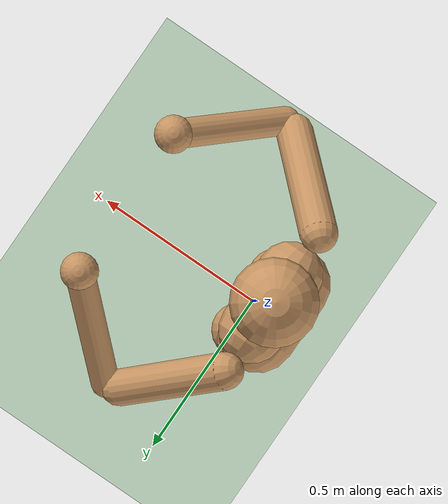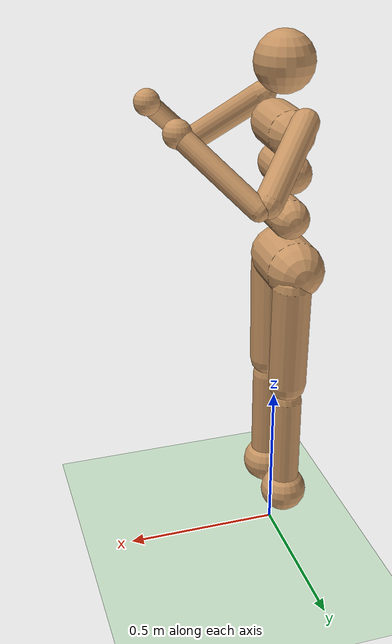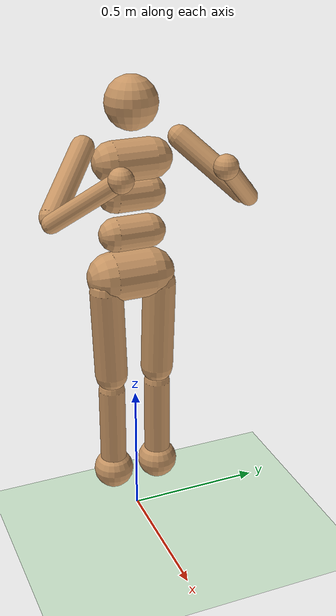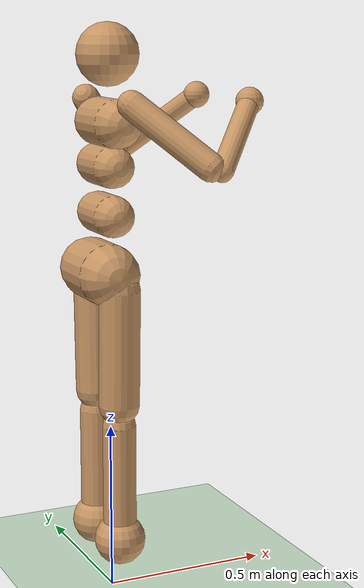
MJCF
<mujoco model="humanoid">
    <compiler angle="degree" inertiafromgeom="auto"/>
    <default>
        <joint armature="1" damping="1" limited="true"/>
        <geom conaffinity="1" condim="1" contype="1" margin="0.001" material="geom" rgba="0.8 0.6 .4 1"/>
        <motor ctrllimited="true" ctrlrange="-.4 .4"/>
    </default>
    <option integrator="RK4" iterations="50" solver="PGS" timestep="0.003">
    </option>
    <size nkey="5" nuser_geom="1"/>
    <visual>
        <map fogend="5" fogstart="3"/>
    </visual>
    <asset>
        <texture builtin="gradient" height="100" rgb1=".4 .5 .6" rgb2="0 0 0" type="skybox" width="100"/>
        <texture builtin="flat" height="1278" mark="cross" markrgb="1 1 1" name="texgeom" random="0.01" rgb1="0.8 0.6 0.4" rgb2="0.8 0.6 0.4" type="cube" width="127"/>
        <texture builtin="checker" height="100" name="texplane" rgb1="0 0 0" rgb2="0.8 0.8 0.8" type="2d" width="100"/>
        <material name="MatPlane" reflectance="0.5" shininess="1" specular="1" texrepeat="60 60" texture="texplane"/>
        <material name="geom" texture="texgeom" texuniform="true"/>
    </asset>
    <worldbody>
        <light cutoff="100" diffuse="1 1 1" dir="-0 0 -1.3" directional="true" exponent="1" pos="0 0 1.3" specular=".1 .1 .1"/>
        <geom condim="3" friction="1 .1 .1" material="MatPlane" name="floor" pos="0 0 0" rgba="0.8 0.9 0.8 1" size="20 20 0.125" type="plane"/>
        <body name="rootx_link" pos="0 0 1.4">
            <joint armature="0" axis="1 0 0" damping="0" range="-0.5 5.5" name="rootx" stiffness="0" type="slide"/>
            <inertial pos="0 0 0" quat="1 0 0 0" mass="0.00001" diaginertia="0.00001 0.00001 0.00001"/>
            <body name="rooty_link" pos="0 0 0">
                <joint armature="0" axis="0 1 0" damping="0" range="-0.5 0.5" name="rooty" stiffness="0" type="slide"/>
                <inertial pos="0 0 0" quat="1 0 0 0" mass="0.00001" diaginertia="0.00001 0.00001 0.00001"/>
                <body name="rootz_link" pos="0 0 0">
                    <joint armature="0" axis="0 0 1" damping="0" range="-0.4 0.1" name="rootz" stiffness="0" type="slide"/>
                    <inertial pos="0 0 0" quat="1 0 0 0" mass="0.00001" diaginertia="0.00001 0.00001 0.00001"/>
                    <body name="rootrz_link" pos="0 0 0">
                        <joint armature="0" axis="0 0 1" damping="0" range="-45 45" name="rootrz" stiffness="0" type="hinge"/>
                        <inertial pos="0 0 0" quat="1 0 0 0" mass="0.00001" diaginertia="0.00001 0.00001 0.00001"/>
                        <body name="rootry_link" pos="0 0 0">
                            <joint armature="0" axis="0 1 0" damping="0" range="-45 45" name="rootry" stiffness="0" type="hinge"/>
                            <inertial pos="0 0 0" quat="1 0 0 0" mass="0.00001" diaginertia="0.00001 0.00001 0.00001"/>
                            <body name="torso" pos="0 0 0">
                                <camera name="track" mode="trackcom" pos="0 -4 0" xyaxes="1 0 0 0 0 1"/>
                                <joint armature="0" axis="1 0 0" damping="0" range="-45 45" name="rootrx" stiffness="0" type="hinge"/>
                                <geom fromto="0 -.07 0 0 .07 0" name="torso1" size="0.07" type="capsule"/>
                                <geom name="head" pos="0 0 .19" size=".09" type="sphere" user="258"/>
                                <geom fromto="-.01 -.06 -.12 -.01 .06 -.12" name="uwaist" size="0.06" type="capsule"/>
                                <body name="lwaist_rz" pos="-.01 0 -0.260" quat="1 0 0 0">
                                    <joint armature="0.02" axis="0 0 1" damping="5" name="abdomen_z" pos="0 0 0.065" range="-45 45" stiffness="20" type="hinge"/>
                                    <inertial pos="0 0 0" quat="1 0 0 0" mass="0.00001" diaginertia="0.00001 0.00001 0.00001"/>
                                    <body name="lwaist" pos="0 0 0">
                                        <geom fromto="0 -.06 0 0 .06 0" name="lwaist" size="0.06" type="capsule"/>
                                        <joint armature="0.02" axis="0 1 0" damping="5" name="abdomen_y" pos="0 0 0.065" range="-75 30" stiffness="10" type="hinge"/>
                                        <body name="pelvis" pos="0 0 -0.165" quat="1 0 0 0">
                                            <joint armature="0.02" axis="1 0 0" damping="5" name="abdomen_x" pos="0 0 0.1" range="-35 35" stiffness="10" type="hinge"/>
                                            <geom fromto="-.02 -.07 0 -.02 .07 0" name="butt" size="0.09" type="capsule"/>
                                            <body name="right_thigh_rx" pos="0 -0.1 -0.04">
                                                <joint armature="0.01" axis="1 0 0" damping="5" name="right_hip_x" pos="0 0 0" range="-25 5" stiffness="10" type="hinge"/>
                                                <inertial pos="0 0 0" quat="1 0 0 0" mass="0.00001" diaginertia="0.00001 0.00001 0.00001"/>
                                                <body name="right_thigh_rz" pos="0 0 0">
                                                    <joint armature="0.01" axis="0 0 1" damping="5" name="right_hip_z" pos="0 0 0" range="-60 35" stiffness="10" type="hinge"/>
                                                    <inertial pos="0 0 0" quat="1 0 0 0" mass="0.00001" diaginertia="0.00001 0.00001 0.00001"/>
                                                    <body name="right_thigh" pos="0 0 0">
                                                        <joint armature="0.0080" axis="0 1 0" damping="5" name="right_hip_y" pos="0 0 0" range="-110 20" stiffness="20" type="hinge"/>
                                                        <geom fromto="0 0 0 0 0.01 -.34" name="right_thigh1" size="0.06" type="capsule"/>
                                                        <body name="right_shin" pos="0 0.01 -0.403">
                                                            <joint armature="0.0060" axis="0 -1 0" name="right_knee" pos="0 0 .02" range="-160 -2" type="hinge"/>
                                                            <geom fromto="0 0 0 0 0 -.3" name="right_shin1" size="0.049" type="capsule"/>
                                                            <body name="right_foot" pos="0 0 -0.45">
                                                                <geom name="right_foot" pos="0 0 0.1" size="0.075" type="sphere" user="0"/>
                                                                <inertial pos="0 0 0" quat="1 0 0 0" mass="0" diaginertia="0 0 0"/>
                                                            </body>
                                                        </body>
                                                    </body>
                                                </body>
                                            </body>
                                            <body name="left_thigh_rx" pos="0 0.1 -0.04">
                                                <joint armature="0.01" axis="-1 0 0" damping="5" name="left_hip_x" pos="0 0 0" range="-25 5" stiffness="10" type="hinge"/>
                                                <inertial pos="0 0 0" quat="1 0 0 0" mass="0.00001" diaginertia="0.00001 0.00001 0.00001"/>
                                                <body name="left_thigh_rz" pos="0 0 0">
                                                    <joint armature="0.01" axis="0 0 -1" damping="5" name="left_hip_z" pos="0 0 0" range="-60 35" stiffness="10" type="hinge"/>
                                                    <inertial pos="0 0 0" quat="1 0 0 0" mass="0.00001" diaginertia="0.00001 0.00001 0.00001"/>
                                                    <body name="left_thigh" pos="0 0 0">
                                                        <joint armature="0.01" axis="0 1 0" damping="5" name="left_hip_y" pos="0 0 0" range="-110 20" stiffness="20" type="hinge"/>
                                                        <geom fromto="0 0 0 0 -0.01 -.34" name="left_thigh1" size="0.06" type="capsule"/>
                                                        <body name="left_shin" pos="0 -0.01 -0.403">
                                                            <joint armature="0.0060" axis="0 -1 0" name="left_knee" pos="0 0 .02" range="-160 -2" stiffness="1" type="hinge"/>
                                                            <geom fromto="0 0 0 0 0 -.3" name="left_shin1" size="0.049" type="capsule"/>
                                                            <body name="left_foot" pos="0 0 -0.45">
                                                                <geom name="left_foot" type="sphere" size="0.075" pos="0 0 0.1" user="0" />
                                                                <inertial pos="0 0 0" quat="1 0 0 0" mass="0" diaginertia="0 0 0"/>
                                                            </body>
                                                        </body>
                                                    </body>
                                                </body>
                                            </body>
                                        </body>
                                    </body>
                                </body>
                                <body name="right_upper_arm_dummy" pos="0 -0.17 0.06">
                                    <joint armature="0.0068" axis="2 1 1" name="right_shoulder1" pos="0 0 0" range="-85 60" stiffness="1" type="hinge"/>
                                    <inertial pos="0 0 0" quat="1 0 0 0" mass="0.00001" diaginertia="0.00001 0.00001 0.00001"/>
                                    <body name="right_upper_arm" pos="0 0 0">
                                        <joint armature="0.0051" axis="0 -1 1" name="right_shoulder2" pos="0 0 0" range="-85 60" stiffness="1" type="hinge"/>
                                        <geom fromto="0 0 0 .16 -.16 -.16" name="right_uarm1" size="0.04 0.16" type="capsule"/>
                                        <body name="right_lower_arm" pos=".18 -.18 -.18">
                                            <joint armature="0.0028" axis="0 -1 1" name="right_elbow" pos="0 0 0" range="-90 50" stiffness="0" type="hinge"/>
                                            <geom fromto="0.01 0.01 0.01 .17 .17 .17" name="right_larm" size="0.031" type="capsule"/>
                                            <geom name="right_hand" pos=".18 .18 .18" size="0.04" type="sphere"/>
                                            <camera pos="0 0 0"/>
                                            <body name="right_finger" pos="0.2 0.2 0.2">
                                                <inertial pos="0 0 0" quat="1 0 0 0" mass="0" diaginertia="0 0 0"/>
                                            </body>
                                        </body>
                                    </body>
                                </body>
                                <body name="left_upper_arm_dummy" pos="0 0.17 0.06">
                                    <joint armature="0.0068" axis="2 -1 1" name="left_shoulder1" pos="0 0 0" range="-60 85" stiffness="1" type="hinge"/>
                                    <inertial pos="0 0 0" quat="1 0 0 0" mass="0.00001" diaginertia="0.00001 0.00001 0.00001"/>
                                    <body name="left_upper_arm" pos="0 0 0">
                                        <joint armature="0.0051" axis="0 1 1" name="left_shoulder2" pos="0 0 0" range="-60 85" stiffness="1" type="hinge"/>
                                        <geom fromto="0 0 0 .16 .16 -.16" name="left_uarm1" size="0.04 0.16" type="capsule"/>
                                        <body name="left_lower_arm" pos=".18 .18 -.18">
                                            <joint armature="0.0028" axis="0 -1 -1" name="left_elbow" pos="0 0 0" range="-90 50" stiffness="0" type="hinge"/>
                                            <geom fromto="0.01 -0.01 0.01 .17 -.17 .17" name="left_larm" size="0.031" type="capsule"/>
                                            <geom name="left_hand" pos=".18 -.18 .18" size="0.04" type="sphere"/>
                                            <body name="left_finger" pos="0.2 -0.2 0.2">
                                                <inertial pos="0 0 0" quat="1 0 0 0" mass="0" diaginertia="0 0 0"/>
                                            </body>
                                        </body>
                                    </body>
                                </body>
                            </body>
                        </body>
                    </body>
                </body>
            </body>
        </body>
    </worldbody>

    <tendon>
        <fixed name="left_hipknee">
            <joint coef="-1" joint="left_hip_y"/>
            <joint coef="1" joint="left_knee"/>
        </fixed>
        <fixed name="right_hipknee">
            <joint coef="-1" joint="right_hip_y"/>
            <joint coef="1" joint="right_knee"/>
        </fixed>
    </tendon>

    <actuator>
        <motor gear="100" joint="abdomen_y" name="abdomen_y"/>
        <motor gear="100" joint="abdomen_z" name="abdomen_z"/>
        <motor gear="100" joint="abdomen_x" name="abdomen_x"/>
        <motor gear="100" joint="right_hip_x" name="right_hip_x"/>
        <motor gear="100" joint="right_hip_z" name="right_hip_z"/>
        <motor gear="300" joint="right_hip_y" name="right_hip_y"/>
        <motor gear="200" joint="right_knee" name="right_knee"/>
        <motor gear="100" joint="left_hip_x" name="left_hip_x"/>
        <motor gear="100" joint="left_hip_z" name="left_hip_z"/>
        <motor gear="300" joint="left_hip_y" name="left_hip_y"/>
        <motor gear="200" joint="left_knee" name="left_knee"/>
        <motor gear="25" joint="right_shoulder1" name="right_shoulder1"/>
        <motor gear="25" joint="right_shoulder2" name="right_shoulder2"/>
        <motor gear="25" joint="right_elbow" name="right_elbow"/>
        <motor gear="25" joint="left_shoulder1" name="left_shoulder1"/>
        <motor gear="25" joint="left_shoulder2" name="left_shoulder2"/>
        <motor gear="25" joint="left_elbow" name="left_elbow"/>
    </actuator>
</mujoco>
